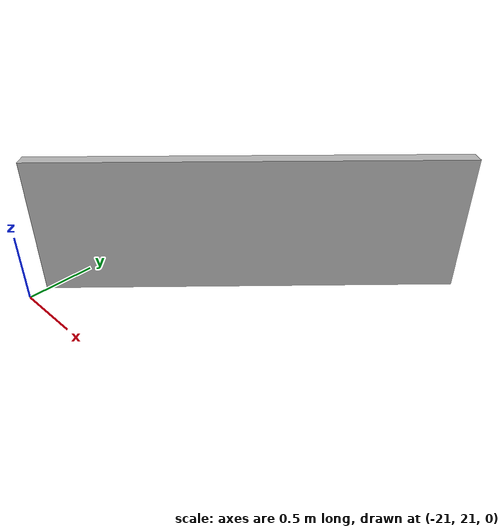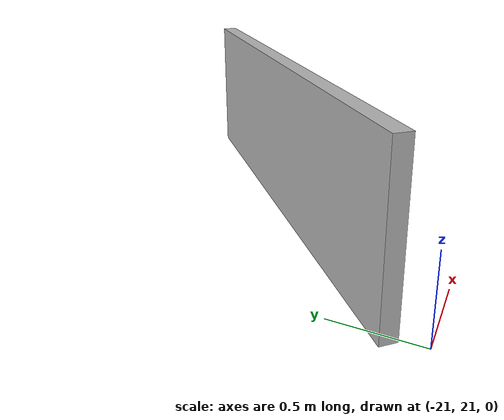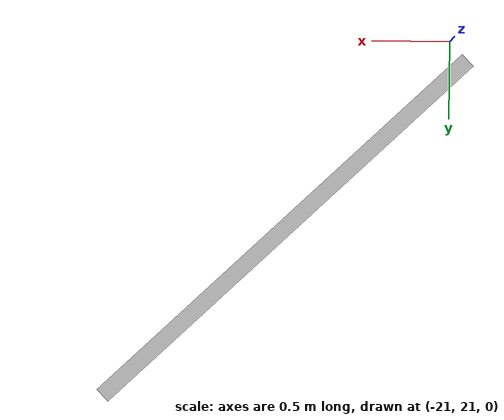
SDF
<sdf version="1.7">
 <world name="default">
  <model name="barricade_4">
   <static>1</static>
   <pose>-19.955 22.2029 0.5 0 0 0.753</pose>
   <link name="link">
    <collision name="collision"><geometry><box><size>3 0.1 1</size></box></geometry></collision>
    <visual name="visual"><geometry><box><size>3 0.1 1</size></box></geometry></visual>
   </link>
  </model>
 </world>
</sdf>
